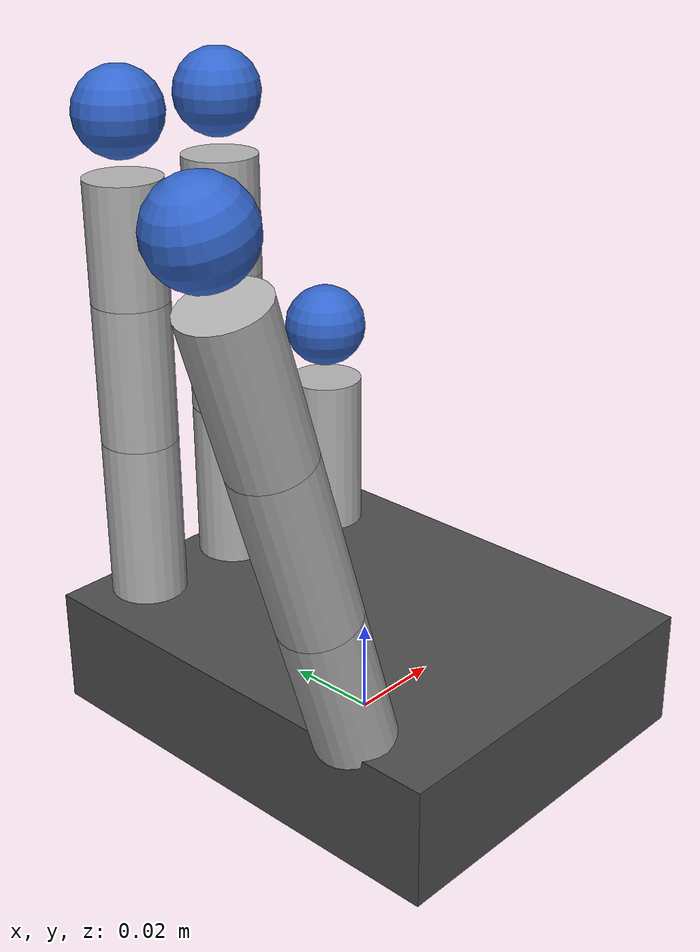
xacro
<?xml version="1.0"?>
<robot xmlns:xacro="http://www.ros.org/wiki/xacro" name="custom_hand">

  <!-- Colors                                                                -->
  <material name="hand_dark_gray">
    <color rgba="0.3 0.3 0.3 1.0"/>
  </material>
  <material name="hand_light_gray">
    <color rgba="0.7 0.7 0.7 1.0"/>
  </material>
  <material name="fingertip_blue">
    <color rgba="0.2 0.4 0.8 1.0"/>
  </material>

  <!-- Palm (hand_base_link)                                                 -->
  <link name="hand_base_link">
    <visual>
      <origin xyz="0 0 0.0125" rpy="0 0 0"/>
      <geometry>
        <box size="0.08 0.10 0.025"/>
      </geometry>
      <material name="hand_dark_gray"/>
    </visual>
    <collision>
      <origin xyz="0 0 0.0125" rpy="0 0 0"/>
      <geometry>
        <box size="0.08 0.10 0.025"/>
      </geometry>
    </collision>
    <inertial>
      <mass value="0.3"/>
      <origin xyz="0 0 0.0125" rpy="0 0 0"/>
      <inertia ixx="0.0001" ixy="0" ixz="0" iyy="0.0001" iyz="0" izz="0.0001"/>
    </inertial>
  </link>

  <!-- Finger link macro                                                     -->
  <xacro:macro name="finger_link" params="name length:=0.035 radius:=0.008 material:=hand_light_gray">
    <link name="${name}">
      <visual>
        <origin xyz="0 0 ${length/2}" rpy="0 0 0"/>
        <geometry>
          <cylinder radius="${radius}" length="${length}"/>
        </geometry>
        <material name="${material}"/>
      </visual>
      <collision>
        <origin xyz="0 0 ${length/2}" rpy="0 0 0"/>
        <geometry>
          <cylinder radius="${radius}" length="${length}"/>
        </geometry>
      </collision>
      <inertial>
        <mass value="0.02"/>
        <origin xyz="0 0 ${length/2}" rpy="0 0 0"/>
        <inertia ixx="1e-6" ixy="0" ixz="0" iyy="1e-6" iyz="0" izz="1e-7"/>
      </inertial>
    </link>
  </xacro:macro>

  <!-- Fingertip link (smaller, blue) -->
  <xacro:macro name="fingertip_link" params="name length:=0.025 radius:=0.009">
    <link name="${name}">
      <visual>
        <origin xyz="0 0 ${length/2}" rpy="0 0 0"/>
        <geometry>
          <sphere radius="${radius}"/>
        </geometry>
        <material name="fingertip_blue"/>
      </visual>
      <collision>
        <origin xyz="0 0 ${length/2}" rpy="0 0 0"/>
        <geometry>
          <sphere radius="${radius}"/>
        </geometry>
      </collision>
      <inertial>
        <mass value="0.01"/>
        <origin xyz="0 0 ${length/2}" rpy="0 0 0"/>
        <inertia ixx="1e-7" ixy="0" ixz="0" iyy="1e-7" iyz="0" izz="1e-7"/>
      </inertial>
    </link>
  </xacro:macro>

  <!-- Revolute joint macro -->
  <xacro:macro name="finger_joint" params="name parent child origin_xyz origin_rpy axis_xyz">
    <joint name="${name}" type="revolute">
      <parent link="${parent}"/>
      <child link="${child}"/>
      <origin xyz="${origin_xyz}" rpy="${origin_rpy}"/>
      <axis xyz="${axis_xyz}"/>
      <limit lower="-1.5708" upper="1.5708" effort="5.0" velocity="3.14"/>
      <dynamics damping="0.01" friction="0.01"/>
    </joint>
  </xacro:macro>

  <!-- THUMB — 3 joints: thumb_cmc_aa, thumb_cmc_fe, thumb_mcp_fe           -->
  <!--   Offset from palm center: X=-0.035 (lateral), Y=-0.03              -->
  <xacro:finger_link name="thumb_cmc_aa_link" length="0.030"/>
  <xacro:finger_link name="thumb_cmc_fe_link" length="0.035"/>
  <xacro:finger_link name="thumb_mcp_fe_link" length="0.030"/>
  <xacro:fingertip_link name="thumb_tip_link"/>

  <!-- thumb_cmc_aa: abduction/adduction (Y-axis rotation) -->
  <xacro:finger_joint name="thumb_cmc_aa"
    parent="hand_base_link" child="thumb_cmc_aa_link"
    origin_xyz="-0.035 -0.03 0.025" origin_rpy="0 -0.3 0"
    axis_xyz="0 1 0"/>

  <!-- thumb_cmc_fe: flexion/extension (X-axis rotation) -->
  <xacro:finger_joint name="thumb_cmc_fe"
    parent="thumb_cmc_aa_link" child="thumb_cmc_fe_link"
    origin_xyz="0 0 0.030" origin_rpy="0 0 0"
    axis_xyz="1 0 0"/>

  <!-- thumb_mcp_fe: flexion/extension -->
  <xacro:finger_joint name="thumb_mcp_fe"
    parent="thumb_cmc_fe_link" child="thumb_mcp_fe_link"
    origin_xyz="0 0 0.035" origin_rpy="0 0 0"
    axis_xyz="1 0 0"/>

  <!-- thumb tip (fixed) -->
  <joint name="thumb_tip_joint" type="fixed">
    <parent link="thumb_mcp_fe_link"/>
    <child link="thumb_tip_link"/>
    <origin xyz="0 0 0.030" rpy="0 0 0"/>
  </joint>

  <!-- INDEX — 3 joints: index_mcp_aa, index_mcp_fe, index_dip_fe           -->
  <!--   Offset: X=-0.025, Y=0.04                                          -->
  <xacro:finger_link name="index_mcp_aa_link" length="0.035"/>
  <xacro:finger_link name="index_mcp_fe_link" length="0.030"/>
  <xacro:finger_link name="index_dip_fe_link" length="0.025"/>
  <xacro:fingertip_link name="index_tip_link"/>

  <!-- index_mcp_aa: abduction/adduction -->
  <xacro:finger_joint name="index_mcp_aa"
    parent="hand_base_link" child="index_mcp_aa_link"
    origin_xyz="-0.025 0.04 0.025" origin_rpy="0 0 0"
    axis_xyz="1 0 0"/>

  <!-- index_mcp_fe: flexion/extension -->
  <xacro:finger_joint name="index_mcp_fe"
    parent="index_mcp_aa_link" child="index_mcp_fe_link"
    origin_xyz="0 0 0.035" origin_rpy="0 0 0"
    axis_xyz="1 0 0"/>

  <!-- index_dip_fe: flexion/extension -->
  <xacro:finger_joint name="index_dip_fe"
    parent="index_mcp_fe_link" child="index_dip_fe_link"
    origin_xyz="0 0 0.030" origin_rpy="0 0 0"
    axis_xyz="1 0 0"/>

  <!-- index tip (fixed) -->
  <joint name="index_tip_joint" type="fixed">
    <parent link="index_dip_fe_link"/>
    <child link="index_tip_link"/>
    <origin xyz="0 0 0.025" rpy="0 0 0"/>
  </joint>

  <!-- MIDDLE — 3 joints: middle_mcp_aa, middle_mcp_fe, middle_dip_fe       -->
  <!--   Offset: X=0.0, Y=0.04                                             -->
  <xacro:finger_link name="middle_mcp_aa_link" length="0.035"/>
  <xacro:finger_link name="middle_mcp_fe_link" length="0.030"/>
  <xacro:finger_link name="middle_dip_fe_link" length="0.025"/>
  <xacro:fingertip_link name="middle_tip_link"/>

  <xacro:finger_joint name="middle_mcp_aa"
    parent="hand_base_link" child="middle_mcp_aa_link"
    origin_xyz="0.0 0.04 0.025" origin_rpy="0 0 0"
    axis_xyz="1 0 0"/>

  <xacro:finger_joint name="middle_mcp_fe"
    parent="middle_mcp_aa_link" child="middle_mcp_fe_link"
    origin_xyz="0 0 0.035" origin_rpy="0 0 0"
    axis_xyz="1 0 0"/>

  <xacro:finger_joint name="middle_dip_fe"
    parent="middle_mcp_fe_link" child="middle_dip_fe_link"
    origin_xyz="0 0 0.030" origin_rpy="0 0 0"
    axis_xyz="1 0 0"/>

  <joint name="middle_tip_joint" type="fixed">
    <parent link="middle_dip_fe_link"/>
    <child link="middle_tip_link"/>
    <origin xyz="0 0 0.025" rpy="0 0 0"/>
  </joint>

  <!-- RING — 1 joint: ring_mcp_fe                                          -->
  <!--   Offset: X=0.025, Y=0.035                                          -->
  <xacro:finger_link name="ring_mcp_fe_link" length="0.035"/>
  <xacro:fingertip_link name="ring_tip_link"/>

  <xacro:finger_joint name="ring_mcp_fe"
    parent="hand_base_link" child="ring_mcp_fe_link"
    origin_xyz="0.025 0.035 0.025" origin_rpy="0 0 0"
    axis_xyz="1 0 0"/>

  <joint name="ring_tip_joint" type="fixed">
    <parent link="ring_mcp_fe_link"/>
    <child link="ring_tip_link"/>
    <origin xyz="0 0 0.035" rpy="0 0 0"/>
  </joint>

</robot>
